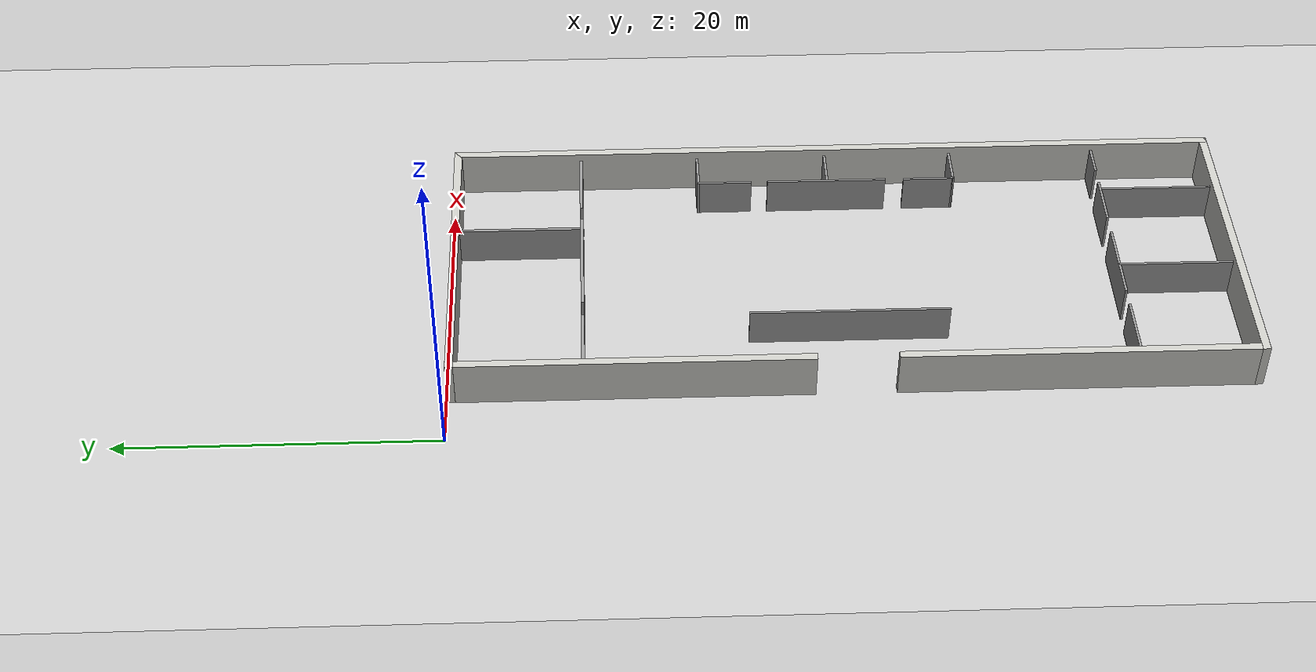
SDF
<sdf version="1.6">
 <world name="default">
  <model name="ground_plane">
   <static>1</static>
   <link name="link">
    <collision name="collision">
     <geometry><plane><normal>0 0 1</normal><size>100 100</size></plane></geometry>
     <surface><friction><ode><mu>100</mu><mu2>50</mu2></ode></friction></surface>
    </collision>
    <visual name="visual">
     <cast_shadows>0</cast_shadows>
     <geometry><plane><normal>0 0 1</normal><size>100 100</size></plane></geometry>
     <material>
      <script><uri>file://media/materials/scripts/gazebo.material</uri><name>Gazebo/Grey</name></script>
     </material>
    </visual>
   </link>
  </model>
  <model name="office">
   <link name="Wall_1">
    <pose>-24.75 -3e-06 0 0 0 -1.5708</pose>
    <inertial>
     <mass>1</mass>
     <inertia><ixx>1</ixx><ixy>0</ixy><ixz>0</ixz><iyy>1</iyy><iyz>0</iyz><izz>1</izz></inertia>
    </inertial>
    <visual name="Wall_1_Visual">
     <pose>0 0 1.25 0 -0 0</pose>
     <geometry><box><size>20 0.5 3.5</size></box></geometry>
     <material>
      <script><uri>file://media/materials/scripts/gazebo.material</uri><name>Gazebo/CeilingTiled</name></script>
      <ambient>1 1 1 1</ambient>
      <shader type="vertex"><normal_map>__default__</normal_map></shader>
      <diffuse>1 1 1 1</diffuse>
      <specular>0 0 0 1</specular>
      <emissive>0 0 0 1</emissive>
     </material>
     <meta><layer>0</layer></meta>
    </visual>
    <collision name="Wall_1_Collision">
     <pose>0 0 1.25 0 -0 0</pose>
     <geometry><box><size>20 0.5 3.5</size></box></geometry>
     <surface>
      <friction>
       <ode><mu>1</mu><mu2>1</mu2><fdir1>0 0 0</fdir1><slip1>0</slip1><slip2>0</slip2></ode>
       <torsional>
        <coefficient>1</coefficient>
        <patch_radius>0</patch_radius>
        <surface_radius>0</surface_radius>
        <use_patch_radius>1</use_patch_radius>
        <ode><slip>0</slip></ode>
       </torsional>
      </friction>
      <bounce><restitution_coefficient>0</restitution_coefficient><threshold>1e+06</threshold></bounce>
      <contact>
       <collide_without_contact>0</collide_without_contact>
       <collide_without_contact_bitmask>1</collide_without_contact_bitmask>
       <collide_bitmask>1</collide_bitmask>
       <ode>
        <soft_cfm>0</soft_cfm>
        <soft_erp>0.2</soft_erp>
        <kp>1e+13</kp>
        <kd>1</kd>
        <max_vel>0.01</max_vel>
        <min_depth>0</min_depth>
       </ode>
       <bullet>
        <split_impulse>1</split_impulse>
        <split_impulse_penetration_threshold>-0.01</split_impulse_penetration_threshold>
        <soft_cfm>0</soft_cfm>
        <soft_erp>0.2</soft_erp>
        <kp>1e+13</kp>
        <kd>1</kd>
       </bullet>
      </contact>
     </surface>
    </collision>
   </link>
   <link name="Wall_11">
    <pose>24.75 3e-06 0 0 0 -1.5708</pose>
    <inertial>
     <mass>1</mass>
     <inertia><ixx>1</ixx><ixy>0</ixy><ixz>0</ixz><iyy>1</iyy><iyz>0</iyz><izz>1</izz></inertia>
    </inertial>
    <visual name="Wall_11_Visual">
     <pose>0 0 1.25 0 -0 0</pose>
     <geometry><box><size>20 0.5 3.5</size></box></geometry>
     <material>
      <script><uri>file://media/materials/scripts/gazebo.material</uri><name>Gazebo/CeilingTiled</name></script>
      <ambient>1 1 1 1</ambient>
      <shader type="vertex"><normal_map>__default__</normal_map></shader>
      <diffuse>1 1 1 1</diffuse>
      <specular>0 0 0 1</specular>
      <emissive>0 0 0 1</emissive>
     </material>
     <meta><layer>0</layer></meta>
    </visual>
    <collision name="Wall_11_Collision">
     <pose>0 0 1.25 0 -0 0</pose>
     <geometry><box><size>20 0.5 3.5</size></box></geometry>
     <surface>
      <friction>
       <ode><mu>1</mu><mu2>1</mu2><fdir1>0 0 0</fdir1><slip1>0</slip1><slip2>0</slip2></ode>
       <torsional>
        <coefficient>1</coefficient>
        <patch_radius>0</patch_radius>
        <surface_radius>0</surface_radius>
        <use_patch_radius>1</use_patch_radius>
        <ode><slip>0</slip></ode>
       </torsional>
      </friction>
      <bounce><restitution_coefficient>0</restitution_coefficient><threshold>1e+06</threshold></bounce>
      <contact>
       <collide_without_contact>0</collide_without_contact>
       <collide_without_contact_bitmask>1</collide_without_contact_bitmask>
       <collide_bitmask>1</collide_bitmask>
       <ode>
        <soft_cfm>0</soft_cfm>
        <soft_erp>0.2</soft_erp>
        <kp>1e+13</kp>
        <kd>1</kd>
        <max_vel>0.01</max_vel>
        <min_depth>0</min_depth>
       </ode>
       <bullet>
        <split_impulse>1</split_impulse>
        <split_impulse_penetration_threshold>-0.01</split_impulse_penetration_threshold>
        <soft_cfm>0</soft_cfm>
        <soft_erp>0.2</soft_erp>
        <kp>1e+13</kp>
        <kd>1</kd>
       </bullet>
      </contact>
     </surface>
    </collision>
   </link>
   <link name="Wall_13">
    <pose>-16.658 7.127 0 0 0 -1.5708</pose>
    <visual name="Wall_13_Visual">
     <pose>0 0 1.25 0 -0 0</pose>
     <geometry><box><size>4.80017 0.2 2.5</size></box></geometry>
     <material>
      <script><uri>file://media/materials/scripts/gazebo.material</uri><name>Gazebo/Grey</name></script>
      <ambient>1 1 1 1</ambient>
     </material>
     <meta><layer>0</layer></meta>
    </visual>
    <collision name="Wall_13_Collision">
     <pose>0 0 1.25 0 -0 0</pose>
     <geometry><box><size>4.80017 0.2 2.5</size></box></geometry>
     <surface>
      <friction>
       <ode><mu>1</mu><mu2>1</mu2><fdir1>0 0 0</fdir1><slip1>0</slip1><slip2>0</slip2></ode>
       <torsional>
        <coefficient>1</coefficient>
        <patch_radius>0</patch_radius>
        <surface_radius>0</surface_radius>
        <use_patch_radius>1</use_patch_radius>
        <ode><slip>0</slip></ode>
       </torsional>
      </friction>
      <bounce><restitution_coefficient>0</restitution_coefficient><threshold>1e+06</threshold></bounce>
      <contact>
       <collide_without_contact>0</collide_without_contact>
       <collide_without_contact_bitmask>1</collide_without_contact_bitmask>
       <collide_bitmask>1</collide_bitmask>
       <ode>
        <soft_cfm>0</soft_cfm>
        <soft_erp>0.2</soft_erp>
        <kp>1e+13</kp>
        <kd>1</kd>
        <max_vel>0.01</max_vel>
        <min_depth>0</min_depth>
       </ode>
       <bullet>
        <split_impulse>1</split_impulse>
        <split_impulse_penetration_threshold>-0.01</split_impulse_penetration_threshold>
        <soft_cfm>0</soft_cfm>
        <soft_erp>0.2</soft_erp>
        <kp>1e+13</kp>
        <kd>1</kd>
       </bullet>
      </contact>
     </surface>
    </collision>
   </link>
   <link name="Wall_15">
    <pose>-16.658 -0.198 0 0 0 -1.5708</pose>
    <visual name="Wall_15_Visual">
     <pose>0 0 1.25 0 -0 0</pose>
     <geometry><box><size>7.75 0.2 2.5</size></box></geometry>
     <material>
      <script><uri>file://media/materials/scripts/gazebo.material</uri><name>Gazebo/Grey</name></script>
      <ambient>1 1 1 1</ambient>
     </material>
     <meta><layer>0</layer></meta>
    </visual>
    <collision name="Wall_15_Collision">
     <pose>0 0 1.25 0 -0 0</pose>
     <geometry><box><size>7.75 0.2 2.5</size></box></geometry>
     <surface>
      <friction>
       <ode><mu>1</mu><mu2>1</mu2><fdir1>0 0 0</fdir1><slip1>0</slip1><slip2>0</slip2></ode>
       <torsional>
        <coefficient>1</coefficient>
        <patch_radius>0</patch_radius>
        <surface_radius>0</surface_radius>
        <use_patch_radius>1</use_patch_radius>
        <ode><slip>0</slip></ode>
       </torsional>
      </friction>
      <bounce><restitution_coefficient>0</restitution_coefficient><threshold>1e+06</threshold></bounce>
      <contact>
       <collide_without_contact>0</collide_without_contact>
       <collide_without_contact_bitmask>1</collide_without_contact_bitmask>
       <collide_bitmask>1</collide_bitmask>
       <ode>
        <soft_cfm>0</soft_cfm>
        <soft_erp>0.2</soft_erp>
        <kp>1e+13</kp>
        <kd>1</kd>
        <max_vel>0.01</max_vel>
        <min_depth>0</min_depth>
       </ode>
       <bullet>
        <split_impulse>1</split_impulse>
        <split_impulse_penetration_threshold>-0.01</split_impulse_penetration_threshold>
        <soft_cfm>0</soft_cfm>
        <soft_erp>0.2</soft_erp>
        <kp>1e+13</kp>
        <kd>1</kd>
       </bullet>
      </contact>
     </surface>
    </collision>
   </link>
   <link name="Wall_17">
    <pose>-16.658 -7.423 0 0 0 -1.5708</pose>
    <visual name="Wall_17_Visual">
     <pose>0 0 1.25 0 -0 0</pose>
     <geometry><box><size>4.5 0.2 2.5</size></box></geometry>
     <material>
      <script><uri>file://media/materials/scripts/gazebo.material</uri><name>Gazebo/Grey</name></script>
      <ambient>1 1 1 1</ambient>
     </material>
     <meta><layer>0</layer></meta>
    </visual>
    <collision name="Wall_17_Collision">
     <pose>0 0 1.25 0 -0 0</pose>
     <geometry><box><size>4.5 0.2 2.5</size></box></geometry>
     <surface>
      <friction>
       <ode><mu>1</mu><mu2>1</mu2><fdir1>0 0 0</fdir1><slip1>0</slip1><slip2>0</slip2></ode>
       <torsional>
        <coefficient>1</coefficient>
        <patch_radius>0</patch_radius>
        <surface_radius>0</surface_radius>
        <use_patch_radius>1</use_patch_radius>
        <ode><slip>0</slip></ode>
       </torsional>
      </friction>
      <bounce><restitution_coefficient>0</restitution_coefficient><threshold>1e+06</threshold></bounce>
      <contact>
       <collide_without_contact>0</collide_without_contact>
       <collide_without_contact_bitmask>1</collide_without_contact_bitmask>
       <collide_bitmask>1</collide_bitmask>
       <ode>
        <soft_cfm>0</soft_cfm>
        <soft_erp>0.2</soft_erp>
        <kp>1e+13</kp>
        <kd>1</kd>
        <max_vel>0.01</max_vel>
        <min_depth>0</min_depth>
       </ode>
       <bullet>
        <split_impulse>1</split_impulse>
        <split_impulse_penetration_threshold>-0.01</split_impulse_penetration_threshold>
        <soft_cfm>0</soft_cfm>
        <soft_erp>0.2</soft_erp>
        <kp>1e+13</kp>
        <kd>1</kd>
       </bullet>
      </contact>
     </surface>
    </collision>
   </link>
   <link name="Wall_19">
    <pose>-20.703 2.792 0 0 -0 0</pose>
    <visual name="Wall_19_Visual">
     <pose>0 0 1.25 0 -0 0</pose>
     <geometry><box><size>8.04985 0.2 2.5</size></box></geometry>
     <material>
      <script><uri>file://media/materials/scripts/gazebo.material</uri><name>Gazebo/Grey</name></script>
      <ambient>1 1 1 1</ambient>
     </material>
     <meta><layer>0</layer></meta>
    </visual>
    <collision name="Wall_19_Collision">
     <pose>0 0 1.25 0 -0 0</pose>
     <geometry><box><size>8.04985 0.2 2.5</size></box></geometry>
     <surface>
      <friction>
       <ode><mu>1</mu><mu2>1</mu2><fdir1>0 0 0</fdir1><slip1>0</slip1><slip2>0</slip2></ode>
       <torsional>
        <coefficient>1</coefficient>
        <patch_radius>0</patch_radius>
        <surface_radius>0</surface_radius>
        <use_patch_radius>1</use_patch_radius>
        <ode><slip>0</slip></ode>
       </torsional>
      </friction>
      <bounce><restitution_coefficient>0</restitution_coefficient><threshold>1e+06</threshold></bounce>
      <contact>
       <collide_without_contact>0</collide_without_contact>
       <collide_without_contact_bitmask>1</collide_without_contact_bitmask>
       <collide_bitmask>1</collide_bitmask>
       <ode>
        <soft_cfm>0</soft_cfm>
        <soft_erp>0.2</soft_erp>
        <kp>1e+13</kp>
        <kd>1</kd>
        <max_vel>0.01</max_vel>
        <min_depth>0</min_depth>
       </ode>
       <bullet>
        <split_impulse>1</split_impulse>
        <split_impulse_penetration_threshold>-0.01</split_impulse_penetration_threshold>
        <soft_cfm>0</soft_cfm>
        <soft_erp>0.2</soft_erp>
        <kp>1e+13</kp>
        <kd>1</kd>
       </bullet>
      </contact>
     </surface>
    </collision>
   </link>
   <link name="Wall_21">
    <pose>17.2839 8.57905 0 0 0 -1.57072</pose>
    <visual name="Wall_21_Visual">
     <pose>0 0 1.25 0 -0 0</pose>
     <geometry><box><size>2.25 0.15 2.5</size></box></geometry>
     <material>
      <script><uri>file://media/materials/scripts/gazebo.material</uri><name>Gazebo/Grey</name></script>
      <ambient>1 1 1 1</ambient>
     </material>
     <meta><layer>0</layer></meta>
    </visual>
    <collision name="Wall_21_Collision">
     <pose>0 0 1.25 0 -0 0</pose>
     <geometry><box><size>2.25 0.15 2.5</size></box></geometry>
     <surface>
      <friction>
       <ode><mu>1</mu><mu2>1</mu2><fdir1>0 0 0</fdir1><slip1>0</slip1><slip2>0</slip2></ode>
       <torsional>
        <coefficient>1</coefficient>
        <patch_radius>0</patch_radius>
        <surface_radius>0</surface_radius>
        <use_patch_radius>1</use_patch_radius>
        <ode><slip>0</slip></ode>
       </torsional>
      </friction>
      <bounce><restitution_coefficient>0</restitution_coefficient><threshold>1e+06</threshold></bounce>
      <contact>
       <collide_without_contact>0</collide_without_contact>
       <collide_without_contact_bitmask>1</collide_without_contact_bitmask>
       <collide_bitmask>1</collide_bitmask>
       <ode>
        <soft_cfm>0</soft_cfm>
        <soft_erp>0.2</soft_erp>
        <kp>1e+13</kp>
        <kd>1</kd>
        <max_vel>0.01</max_vel>
        <min_depth>0</min_depth>
       </ode>
       <bullet>
        <split_impulse>1</split_impulse>
        <split_impulse_penetration_threshold>-0.01</split_impulse_penetration_threshold>
        <soft_cfm>0</soft_cfm>
        <soft_erp>0.2</soft_erp>
        <kp>1e+13</kp>
        <kd>1</kd>
       </bullet>
      </contact>
     </surface>
    </collision>
   </link>
   <link name="Wall_23">
    <pose>17.2838 4.5041 0 0 0 -1.5708</pose>
    <visual name="Wall_23_Visual">
     <pose>0 0 1.25 0 -0 0</pose>
     <geometry><box><size>3.5 0.15 2.5</size></box></geometry>
     <material>
      <script><uri>file://media/materials/scripts/gazebo.material</uri><name>Gazebo/Grey</name></script>
      <ambient>1 1 1 1</ambient>
     </material>
     <meta><layer>0</layer></meta>
    </visual>
    <collision name="Wall_23_Collision">
     <pose>0 0 1.25 0 -0 0</pose>
     <geometry><box><size>3.5 0.15 2.5</size></box></geometry>
     <surface>
      <friction>
       <ode><mu>1</mu><mu2>1</mu2><fdir1>0 0 0</fdir1><slip1>0</slip1><slip2>0</slip2></ode>
       <torsional>
        <coefficient>1</coefficient>
        <patch_radius>0</patch_radius>
        <surface_radius>0</surface_radius>
        <use_patch_radius>1</use_patch_radius>
        <ode><slip>0</slip></ode>
       </torsional>
      </friction>
      <bounce><restitution_coefficient>0</restitution_coefficient><threshold>1e+06</threshold></bounce>
      <contact>
       <collide_without_contact>0</collide_without_contact>
       <collide_without_contact_bitmask>1</collide_without_contact_bitmask>
       <collide_bitmask>1</collide_bitmask>
       <ode>
        <soft_cfm>0</soft_cfm>
        <soft_erp>0.2</soft_erp>
        <kp>1e+13</kp>
        <kd>1</kd>
        <max_vel>0.01</max_vel>
        <min_depth>0</min_depth>
       </ode>
       <bullet>
        <split_impulse>1</split_impulse>
        <split_impulse_penetration_threshold>-0.01</split_impulse_penetration_threshold>
        <soft_cfm>0</soft_cfm>
        <soft_erp>0.2</soft_erp>
        <kp>1e+13</kp>
        <kd>1</kd>
       </bullet>
      </contact>
     </surface>
    </collision>
   </link>
   <link name="Wall_25">
    <pose>17.2838 -1.3459 0 0 0 -1.5708</pose>
    <visual name="Wall_25_Visual">
     <pose>0 0 1.25 0 -0 0</pose>
     <geometry><box><size>5.5 0.15 2.5</size></box></geometry>
     <material>
      <script><uri>file://media/materials/scripts/gazebo.material</uri><name>Gazebo/Grey</name></script>
      <ambient>1 1 1 1</ambient>
     </material>
     <meta><layer>0</layer></meta>
    </visual>
    <collision name="Wall_25_Collision">
     <pose>0 0 1.25 0 -0 0</pose>
     <geometry><box><size>5.5 0.15 2.5</size></box></geometry>
     <surface>
      <friction>
       <ode><mu>1</mu><mu2>1</mu2><fdir1>0 0 0</fdir1><slip1>0</slip1><slip2>0</slip2></ode>
       <torsional>
        <coefficient>1</coefficient>
        <patch_radius>0</patch_radius>
        <surface_radius>0</surface_radius>
        <use_patch_radius>1</use_patch_radius>
        <ode><slip>0</slip></ode>
       </torsional>
      </friction>
      <bounce><restitution_coefficient>0</restitution_coefficient><threshold>1e+06</threshold></bounce>
      <contact>
       <collide_without_contact>0</collide_without_contact>
       <collide_without_contact_bitmask>1</collide_without_contact_bitmask>
       <collide_bitmask>1</collide_bitmask>
       <ode>
        <soft_cfm>0</soft_cfm>
        <soft_erp>0.2</soft_erp>
        <kp>1e+13</kp>
        <kd>1</kd>
        <max_vel>0.01</max_vel>
        <min_depth>0</min_depth>
       </ode>
       <bullet>
        <split_impulse>1</split_impulse>
        <split_impulse_penetration_threshold>-0.01</split_impulse_penetration_threshold>
        <soft_cfm>0</soft_cfm>
        <soft_erp>0.2</soft_erp>
        <kp>1e+13</kp>
        <kd>1</kd>
       </bullet>
      </contact>
     </surface>
    </collision>
   </link>
   <link name="Wall_27">
    <pose>17.2838 -7.4709 0 0 0 -1.5708</pose>
    <visual name="Wall_27_Visual">
     <pose>0 0 1.25 0 -0 0</pose>
     <geometry><box><size>4.35 0.15 2.5</size></box></geometry>
     <material>
      <script><uri>file://media/materials/scripts/gazebo.material</uri><name>Gazebo/Grey</name></script>
      <ambient>1 1 1 1</ambient>
     </material>
     <meta><layer>0</layer></meta>
    </visual>
    <collision name="Wall_27_Collision">
     <pose>0 0 1.25 0 -0 0</pose>
     <geometry><box><size>4.35 0.15 2.5</size></box></geometry>
     <surface>
      <friction>
       <ode><mu>1</mu><mu2>1</mu2><fdir1>0 0 0</fdir1><slip1>0</slip1><slip2>0</slip2></ode>
       <torsional>
        <coefficient>1</coefficient>
        <patch_radius>0</patch_radius>
        <surface_radius>0</surface_radius>
        <use_patch_radius>1</use_patch_radius>
        <ode><slip>0</slip></ode>
       </torsional>
      </friction>
      <bounce><restitution_coefficient>0</restitution_coefficient><threshold>1e+06</threshold></bounce>
      <contact>
       <collide_without_contact>0</collide_without_contact>
       <collide_without_contact_bitmask>1</collide_without_contact_bitmask>
       <collide_bitmask>1</collide_bitmask>
       <ode>
        <soft_cfm>0</soft_cfm>
        <soft_erp>0.2</soft_erp>
        <kp>1e+13</kp>
        <kd>1</kd>
        <max_vel>0.01</max_vel>
        <min_depth>0</min_depth>
       </ode>
       <bullet>
        <split_impulse>1</split_impulse>
        <split_impulse_penetration_threshold>-0.01</split_impulse_penetration_threshold>
        <soft_cfm>0</soft_cfm>
        <soft_erp>0.2</soft_erp>
        <kp>1e+13</kp>
        <kd>1</kd>
       </bullet>
      </contact>
     </surface>
    </collision>
   </link>
   <link name="Wall_29">
    <pose>20.9993 5.58355 0 0 -0 0</pose>
    <visual name="Wall_29_Visual">
     <pose>0 0 1.25 0 -0 0</pose>
     <geometry><box><size>7.5 0.15 2.5</size></box></geometry>
     <material>
      <script><uri>file://media/materials/scripts/gazebo.material</uri><name>Gazebo/Grey</name></script>
      <ambient>1 1 1 1</ambient>
     </material>
     <meta><layer>0</layer></meta>
    </visual>
    <collision name="Wall_29_Collision">
     <pose>0 0 1.25 0 -0 0</pose>
     <geometry><box><size>7.5 0.15 2.5</size></box></geometry>
     <surface>
      <friction>
       <ode><mu>1</mu><mu2>1</mu2><fdir1>0 0 0</fdir1><slip1>0</slip1><slip2>0</slip2></ode>
       <torsional>
        <coefficient>1</coefficient>
        <patch_radius>0</patch_radius>
        <surface_radius>0</surface_radius>
        <use_patch_radius>1</use_patch_radius>
        <ode><slip>0</slip></ode>
       </torsional>
      </friction>
      <bounce><restitution_coefficient>0</restitution_coefficient><threshold>1e+06</threshold></bounce>
      <contact>
       <collide_without_contact>0</collide_without_contact>
       <collide_without_contact_bitmask>1</collide_without_contact_bitmask>
       <collide_bitmask>1</collide_bitmask>
       <ode>
        <soft_cfm>0</soft_cfm>
        <soft_erp>0.2</soft_erp>
        <kp>1e+13</kp>
        <kd>1</kd>
        <max_vel>0.01</max_vel>
        <min_depth>0</min_depth>
       </ode>
       <bullet>
        <split_impulse>1</split_impulse>
        <split_impulse_penetration_threshold>-0.01</split_impulse_penetration_threshold>
        <soft_cfm>0</soft_cfm>
        <soft_erp>0.2</soft_erp>
        <kp>1e+13</kp>
        <kd>1</kd>
       </bullet>
      </contact>
     </surface>
    </collision>
   </link>
   <link name="Wall_3">
    <pose>-1e-06 9.75 0 0 -0 0</pose>
    <inertial>
     <mass>1</mass>
     <inertia><ixx>1</ixx><ixy>0</ixy><ixz>0</ixz><iyy>1</iyy><iyz>0</iyz><izz>1</izz></inertia>
    </inertial>
    <visual name="Wall_3_Visual">
     <pose>0 0 1.25 0 -0 0</pose>
     <geometry><box><size>50 0.5 3.5</size></box></geometry>
     <material>
      <script><uri>file://media/materials/scripts/gazebo.material</uri><name>Gazebo/CeilingTiled</name></script>
      <ambient>1 1 1 1</ambient>
      <shader type="vertex"><normal_map>__default__</normal_map></shader>
      <diffuse>1 1 1 1</diffuse>
      <specular>0 0 0 1</specular>
      <emissive>0 0 0 1</emissive>
     </material>
     <meta><layer>0</layer></meta>
    </visual>
    <collision name="Wall_3_Collision">
     <pose>0 0 1.25 0 -0 0</pose>
     <geometry><box><size>50 0.5 3.5</size></box></geometry>
     <surface>
      <friction>
       <ode><mu>1</mu><mu2>1</mu2><fdir1>0 0 0</fdir1><slip1>0</slip1><slip2>0</slip2></ode>
       <torsional>
        <coefficient>1</coefficient>
        <patch_radius>0</patch_radius>
        <surface_radius>0</surface_radius>
        <use_patch_radius>1</use_patch_radius>
        <ode><slip>0</slip></ode>
       </torsional>
      </friction>
      <bounce><restitution_coefficient>0</restitution_coefficient><threshold>1e+06</threshold></bounce>
      <contact>
       <collide_without_contact>0</collide_without_contact>
       <collide_without_contact_bitmask>1</collide_without_contact_bitmask>
       <collide_bitmask>1</collide_bitmask>
       <ode>
        <soft_cfm>0</soft_cfm>
        <soft_erp>0.2</soft_erp>
        <kp>1e+13</kp>
        <kd>1</kd>
        <max_vel>0.01</max_vel>
        <min_depth>0</min_depth>
       </ode>
       <bullet>
        <split_impulse>1</split_impulse>
        <split_impulse_penetration_threshold>-0.01</split_impulse_penetration_threshold>
        <soft_cfm>0</soft_cfm>
        <soft_erp>0.2</soft_erp>
        <kp>1e+13</kp>
        <kd>1</kd>
       </bullet>
      </contact>
     </surface>
    </collision>
   </link>
   <link name="Wall_31">
    <pose>20.9993 -1.658 0 0 -0 0</pose>
    <visual name="Wall_31_Visual">
     <pose>0 0 1.25 0 -0 0</pose>
     <geometry><box><size>7.5 0.15 2.5</size></box></geometry>
     <material>
      <script><uri>file://media/materials/scripts/gazebo.material</uri><name>Gazebo/Grey</name></script>
      <ambient>1 1 1 1</ambient>
     </material>
     <meta><layer>0</layer></meta>
    </visual>
    <collision name="Wall_31_Collision">
     <pose>0 0 1.25 0 -0 0</pose>
     <geometry><box><size>7.5 0.15 2.5</size></box></geometry>
     <surface>
      <friction>
       <ode><mu>1</mu><mu2>1</mu2><fdir1>0 0 0</fdir1><slip1>0</slip1><slip2>0</slip2></ode>
       <torsional>
        <coefficient>1</coefficient>
        <patch_radius>0</patch_radius>
        <surface_radius>0</surface_radius>
        <use_patch_radius>1</use_patch_radius>
        <ode><slip>0</slip></ode>
       </torsional>
      </friction>
      <bounce><restitution_coefficient>0</restitution_coefficient><threshold>1e+06</threshold></bounce>
      <contact>
       <collide_without_contact>0</collide_without_contact>
       <collide_without_contact_bitmask>1</collide_without_contact_bitmask>
       <collide_bitmask>1</collide_bitmask>
       <ode>
        <soft_cfm>0</soft_cfm>
        <soft_erp>0.2</soft_erp>
        <kp>1e+13</kp>
        <kd>1</kd>
        <max_vel>0.01</max_vel>
        <min_depth>0</min_depth>
       </ode>
       <bullet>
        <split_impulse>1</split_impulse>
        <split_impulse_penetration_threshold>-0.01</split_impulse_penetration_threshold>
        <soft_cfm>0</soft_cfm>
        <soft_erp>0.2</soft_erp>
        <kp>1e+13</kp>
        <kd>1</kd>
       </bullet>
      </contact>
     </surface>
    </collision>
   </link>
   <link name="Wall_34">
    <pose>-8.97184 8.28865 0 0 0 -1.5708</pose>
    <visual name="Wall_34_Visual">
     <pose>0 0 1.25 0 -0 0</pose>
     <geometry><box><size>2.75032 0.15 2.5</size></box></geometry>
     <material>
      <script><uri>file://media/materials/scripts/gazebo.material</uri><name>Gazebo/Grey</name></script>
      <ambient>1 1 1 1</ambient>
     </material>
     <meta><layer>0</layer></meta>
    </visual>
    <collision name="Wall_34_Collision">
     <pose>0 0 1.25 0 -0 0</pose>
     <geometry><box><size>2.75032 0.15 2.5</size></box></geometry>
     <surface>
      <friction>
       <ode><mu>1</mu><mu2>1</mu2><fdir1>0 0 0</fdir1><slip1>0</slip1><slip2>0</slip2></ode>
       <torsional>
        <coefficient>1</coefficient>
        <patch_radius>0</patch_radius>
        <surface_radius>0</surface_radius>
        <use_patch_radius>1</use_patch_radius>
        <ode><slip>0</slip></ode>
       </torsional>
      </friction>
      <bounce><restitution_coefficient>0</restitution_coefficient><threshold>1e+06</threshold></bounce>
      <contact>
       <collide_without_contact>0</collide_without_contact>
       <collide_without_contact_bitmask>1</collide_without_contact_bitmask>
       <collide_bitmask>1</collide_bitmask>
       <ode>
        <soft_cfm>0</soft_cfm>
        <soft_erp>0.2</soft_erp>
        <kp>1e+13</kp>
        <kd>1</kd>
        <max_vel>0.01</max_vel>
        <min_depth>0</min_depth>
       </ode>
       <bullet>
        <split_impulse>1</split_impulse>
        <split_impulse_penetration_threshold>-0.01</split_impulse_penetration_threshold>
        <soft_cfm>0</soft_cfm>
        <soft_erp>0.2</soft_erp>
        <kp>1e+13</kp>
        <kd>1</kd>
       </bullet>
      </contact>
     </surface>
    </collision>
   </link>
   <link name="Wall_35">
    <pose>-7.25638 6.98865 0 0 -0 0</pose>
    <visual name="Wall_35_Visual">
     <pose>0 0 1.25 0 -0 0</pose>
     <geometry><box><size>3.5 0.15 2.5</size></box></geometry>
     <material>
      <script><uri>file://media/materials/scripts/gazebo.material</uri><name>Gazebo/Grey</name></script>
      <ambient>1 1 1 1</ambient>
     </material>
     <meta><layer>0</layer></meta>
    </visual>
    <collision name="Wall_35_Collision">
     <pose>0 0 1.25 0 -0 0</pose>
     <geometry><box><size>3.5 0.15 2.5</size></box></geometry>
     <surface>
      <friction>
       <ode><mu>1</mu><mu2>1</mu2><fdir1>0 0 0</fdir1><slip1>0</slip1><slip2>0</slip2></ode>
       <torsional>
        <coefficient>1</coefficient>
        <patch_radius>0</patch_radius>
        <surface_radius>0</surface_radius>
        <use_patch_radius>1</use_patch_radius>
        <ode><slip>0</slip></ode>
       </torsional>
      </friction>
      <bounce><restitution_coefficient>0</restitution_coefficient><threshold>1e+06</threshold></bounce>
      <contact>
       <collide_without_contact>0</collide_without_contact>
       <collide_without_contact_bitmask>1</collide_without_contact_bitmask>
       <collide_bitmask>1</collide_bitmask>
       <ode>
        <soft_cfm>0</soft_cfm>
        <soft_erp>0.2</soft_erp>
        <kp>1e+13</kp>
        <kd>1</kd>
        <max_vel>0.01</max_vel>
        <min_depth>0</min_depth>
       </ode>
       <bullet>
        <split_impulse>1</split_impulse>
        <split_impulse_penetration_threshold>-0.01</split_impulse_penetration_threshold>
        <soft_cfm>0</soft_cfm>
        <soft_erp>0.2</soft_erp>
        <kp>1e+13</kp>
        <kd>1</kd>
       </bullet>
      </contact>
     </surface>
    </collision>
   </link>
   <link name="Wall_37">
    <pose>-0.572 6.989 0 0 -0 0</pose>
    <visual name="Wall_37_Visual">
     <pose>0 0 1.25 0 -0 0</pose>
     <geometry><box><size>7.75 0.15 2.5</size></box></geometry>
     <material>
      <script><uri>file://media/materials/scripts/gazebo.material</uri><name>Gazebo/Grey</name></script>
      <ambient>1 1 1 1</ambient>
     </material>
     <meta><layer>0</layer></meta>
    </visual>
    <collision name="Wall_37_Collision">
     <pose>0 0 1.25 0 -0 0</pose>
     <geometry><box><size>7.75 0.15 2.5</size></box></geometry>
     <surface>
      <friction>
       <ode><mu>1</mu><mu2>1</mu2><fdir1>0 0 0</fdir1><slip1>0</slip1><slip2>0</slip2></ode>
       <torsional>
        <coefficient>1</coefficient>
        <patch_radius>0</patch_radius>
        <surface_radius>0</surface_radius>
        <use_patch_radius>1</use_patch_radius>
        <ode><slip>0</slip></ode>
       </torsional>
      </friction>
      <bounce><restitution_coefficient>0</restitution_coefficient><threshold>1e+06</threshold></bounce>
      <contact>
       <collide_without_contact>0</collide_without_contact>
       <collide_without_contact_bitmask>1</collide_without_contact_bitmask>
       <collide_bitmask>1</collide_bitmask>
       <ode>
        <soft_cfm>0</soft_cfm>
        <soft_erp>0.2</soft_erp>
        <kp>1e+13</kp>
        <kd>1</kd>
        <max_vel>0.01</max_vel>
        <min_depth>0</min_depth>
       </ode>
       <bullet>
        <split_impulse>1</split_impulse>
        <split_impulse_penetration_threshold>-0.01</split_impulse_penetration_threshold>
        <soft_cfm>0</soft_cfm>
        <soft_erp>0.2</soft_erp>
        <kp>1e+13</kp>
        <kd>1</kd>
       </bullet>
      </contact>
     </surface>
    </collision>
   </link>
   <link name="Wall_39">
    <pose>6.17808 6.98882 0 0 0 -0.00011</pose>
    <visual name="Wall_39_Visual">
     <pose>0 0 1.25 0 -0 0</pose>
     <geometry><box><size>3.35 0.15 2.5</size></box></geometry>
     <material>
      <script><uri>file://media/materials/scripts/gazebo.material</uri><name>Gazebo/Grey</name></script>
      <ambient>1 1 1 1</ambient>
     </material>
     <meta><layer>0</layer></meta>
    </visual>
    <collision name="Wall_39_Collision">
     <pose>0 0 1.25 0 -0 0</pose>
     <geometry><box><size>3.35 0.15 2.5</size></box></geometry>
     <surface>
      <friction>
       <ode><mu>1</mu><mu2>1</mu2><fdir1>0 0 0</fdir1><slip1>0</slip1><slip2>0</slip2></ode>
       <torsional>
        <coefficient>1</coefficient>
        <patch_radius>0</patch_radius>
        <surface_radius>0</surface_radius>
        <use_patch_radius>1</use_patch_radius>
        <ode><slip>0</slip></ode>
       </torsional>
      </friction>
      <bounce><restitution_coefficient>0</restitution_coefficient><threshold>1e+06</threshold></bounce>
      <contact>
       <collide_without_contact>0</collide_without_contact>
       <collide_without_contact_bitmask>1</collide_without_contact_bitmask>
       <collide_bitmask>1</collide_bitmask>
       <ode>
        <soft_cfm>0</soft_cfm>
        <soft_erp>0.2</soft_erp>
        <kp>1e+13</kp>
        <kd>1</kd>
        <max_vel>0.01</max_vel>
        <min_depth>0</min_depth>
       </ode>
       <bullet>
        <split_impulse>1</split_impulse>
        <split_impulse_penetration_threshold>-0.01</split_impulse_penetration_threshold>
        <soft_cfm>0</soft_cfm>
        <soft_erp>0.2</soft_erp>
        <kp>1e+13</kp>
        <kd>1</kd>
       </bullet>
      </contact>
     </surface>
    </collision>
   </link>
   <link name="Wall_40">
    <pose>7.77816 8.28865 0 0 -0 1.5708</pose>
    <visual name="Wall_40_Visual">
     <pose>0 0 1.25 0 -0 0</pose>
     <geometry><box><size>2.75 0.15 2.5</size></box></geometry>
     <material>
      <script><uri>file://media/materials/scripts/gazebo.material</uri><name>Gazebo/Grey</name></script>
      <ambient>1 1 1 1</ambient>
     </material>
     <meta><layer>0</layer></meta>
    </visual>
    <collision name="Wall_40_Collision">
     <pose>0 0 1.25 0 -0 0</pose>
     <geometry><box><size>2.75 0.15 2.5</size></box></geometry>
     <surface>
      <friction>
       <ode><mu>1</mu><mu2>1</mu2><fdir1>0 0 0</fdir1><slip1>0</slip1><slip2>0</slip2></ode>
       <torsional>
        <coefficient>1</coefficient>
        <patch_radius>0</patch_radius>
        <surface_radius>0</surface_radius>
        <use_patch_radius>1</use_patch_radius>
        <ode><slip>0</slip></ode>
       </torsional>
      </friction>
      <bounce><restitution_coefficient>0</restitution_coefficient><threshold>1e+06</threshold></bounce>
      <contact>
       <collide_without_contact>0</collide_without_contact>
       <collide_without_contact_bitmask>1</collide_without_contact_bitmask>
       <collide_bitmask>1</collide_bitmask>
       <ode>
        <soft_cfm>0</soft_cfm>
        <soft_erp>0.2</soft_erp>
        <kp>1e+13</kp>
        <kd>1</kd>
        <max_vel>0.01</max_vel>
        <min_depth>0</min_depth>
       </ode>
       <bullet>
        <split_impulse>1</split_impulse>
        <split_impulse_penetration_threshold>-0.01</split_impulse_penetration_threshold>
        <soft_cfm>0</soft_cfm>
        <soft_erp>0.2</soft_erp>
        <kp>1e+13</kp>
        <kd>1</kd>
       </bullet>
      </contact>
     </surface>
    </collision>
   </link>
   <link name="Wall_42">
    <pose>-0.516625 8.36956 0 0 0 -1.5708</pose>
    <visual name="Wall_42_Visual">
     <pose>0 0 1.25 0 -0 0</pose>
     <geometry><box><size>2.75 0.15 2.5</size></box></geometry>
     <material>
      <script><uri>file://media/materials/scripts/gazebo.material</uri><name>Gazebo/Grey</name></script>
      <ambient>1 1 1 1</ambient>
     </material>
     <meta><layer>0</layer></meta>
    </visual>
    <collision name="Wall_42_Collision">
     <pose>0 0 1.25 0 -0 0</pose>
     <geometry><box><size>2.75 0.15 2.5</size></box></geometry>
     <surface>
      <friction>
       <ode><mu>1</mu><mu2>1</mu2><fdir1>0 0 0</fdir1><slip1>0</slip1><slip2>0</slip2></ode>
       <torsional>
        <coefficient>1</coefficient>
        <patch_radius>0</patch_radius>
        <surface_radius>0</surface_radius>
        <use_patch_radius>1</use_patch_radius>
        <ode><slip>0</slip></ode>
       </torsional>
      </friction>
      <bounce><restitution_coefficient>0</restitution_coefficient><threshold>1e+06</threshold></bounce>
      <contact>
       <collide_without_contact>0</collide_without_contact>
       <collide_without_contact_bitmask>1</collide_without_contact_bitmask>
       <collide_bitmask>1</collide_bitmask>
       <ode>
        <soft_cfm>0</soft_cfm>
        <soft_erp>0.2</soft_erp>
        <kp>1e+13</kp>
        <kd>1</kd>
        <max_vel>0.01</max_vel>
        <min_depth>0</min_depth>
       </ode>
       <bullet>
        <split_impulse>1</split_impulse>
        <split_impulse_penetration_threshold>-0.01</split_impulse_penetration_threshold>
        <soft_cfm>0</soft_cfm>
        <soft_erp>0.2</soft_erp>
        <kp>1e+13</kp>
        <kd>1</kd>
       </bullet>
      </contact>
     </surface>
    </collision>
   </link>
   <link name="Wall_44">
    <pose>-0.086317 -5.33946 0 0 -0 0</pose>
    <visual name="Wall_44_Visual">
     <pose>0 0 1.25 0 -0 0</pose>
     <geometry><box><size>12.5 0.15 2.5</size></box></geometry>
     <material>
      <script><uri>file://media/materials/scripts/gazebo.material</uri><name>Gazebo/Grey</name></script>
      <ambient>1 1 1 1</ambient>
     </material>
     <meta><layer>0</layer></meta>
    </visual>
    <collision name="Wall_44_Collision">
     <pose>0 0 1.25 0 -0 0</pose>
     <geometry><box><size>12.5 0.15 2.5</size></box></geometry>
     <surface>
      <friction>
       <ode><mu>1</mu><mu2>1</mu2><fdir1>0 0 0</fdir1><slip1>0</slip1><slip2>0</slip2></ode>
       <torsional>
        <coefficient>1</coefficient>
        <patch_radius>0</patch_radius>
        <surface_radius>0</surface_radius>
        <use_patch_radius>1</use_patch_radius>
        <ode><slip>0</slip></ode>
       </torsional>
      </friction>
      <bounce><restitution_coefficient>0</restitution_coefficient><threshold>1e+06</threshold></bounce>
      <contact>
       <collide_without_contact>0</collide_without_contact>
       <collide_without_contact_bitmask>1</collide_without_contact_bitmask>
       <collide_bitmask>1</collide_bitmask>
       <ode>
        <soft_cfm>0</soft_cfm>
        <soft_erp>0.2</soft_erp>
        <kp>1e+13</kp>
        <kd>1</kd>
        <max_vel>0.01</max_vel>
        <min_depth>0</min_depth>
       </ode>
       <bullet>
        <split_impulse>1</split_impulse>
        <split_impulse_penetration_threshold>-0.01</split_impulse_penetration_threshold>
        <soft_cfm>0</soft_cfm>
        <soft_erp>0.2</soft_erp>
        <kp>1e+13</kp>
        <kd>1</kd>
       </bullet>
      </contact>
     </surface>
    </collision>
   </link>
   <link name="Wall_7">
    <pose>-13.75 -9.75 0 0 -0 0</pose>
    <inertial>
     <mass>1</mass>
     <inertia><ixx>1</ixx><ixy>0</ixy><ixz>0</ixz><iyy>1</iyy><iyz>0</iyz><izz>1</izz></inertia>
    </inertial>
    <visual name="Wall_7_Visual">
     <pose>0 0 1.25 0 -0 0</pose>
     <geometry><box><size>22.5 0.5 3.5</size></box></geometry>
     <material>
      <script><uri>file://media/materials/scripts/gazebo.material</uri><name>Gazebo/CeilingTiled</name></script>
      <ambient>1 1 1 1</ambient>
      <shader type="vertex"><normal_map>__default__</normal_map></shader>
      <diffuse>1 1 1 1</diffuse>
      <specular>0 0 0 1</specular>
      <emissive>0 0 0 1</emissive>
     </material>
     <meta><layer>0</layer></meta>
    </visual>
    <collision name="Wall_7_Collision">
     <pose>0 0 1.25 0 -0 0</pose>
     <geometry><box><size>22.5 0.5 3.5</size></box></geometry>
     <surface>
      <friction>
       <ode><mu>1</mu><mu2>1</mu2><fdir1>0 0 0</fdir1><slip1>0</slip1><slip2>0</slip2></ode>
       <torsional>
        <coefficient>1</coefficient>
        <patch_radius>0</patch_radius>
        <surface_radius>0</surface_radius>
        <use_patch_radius>1</use_patch_radius>
        <ode><slip>0</slip></ode>
       </torsional>
      </friction>
      <bounce><restitution_coefficient>0</restitution_coefficient><threshold>1e+06</threshold></bounce>
      <contact>
       <collide_without_contact>0</collide_without_contact>
       <collide_without_contact_bitmask>1</collide_without_contact_bitmask>
       <collide_bitmask>1</collide_bitmask>
       <ode>
        <soft_cfm>0</soft_cfm>
        <soft_erp>0.2</soft_erp>
        <kp>1e+13</kp>
        <kd>1</kd>
        <max_vel>0.01</max_vel>
        <min_depth>0</min_depth>
       </ode>
       <bullet>
        <split_impulse>1</split_impulse>
        <split_impulse_penetration_threshold>-0.01</split_impulse_penetration_threshold>
        <soft_cfm>0</soft_cfm>
        <soft_erp>0.2</soft_erp>
        <kp>1e+13</kp>
        <kd>1</kd>
       </bullet>
      </contact>
     </surface>
    </collision>
   </link>
   <link name="Wall_9">
    <pose>13.7296 -9.74954 0 0 -0 0</pose>
    <inertial>
     <mass>1</mass>
     <inertia><ixx>1</ixx><ixy>0</ixy><ixz>0</ixz><iyy>1</iyy><iyz>0</iyz><izz>1</izz></inertia>
    </inertial>
    <visual name="Wall_9_Visual">
     <pose>0 0 1.25 0 -0 0</pose>
     <geometry><box><size>22.5 0.5 3.5</size></box></geometry>
     <material>
      <script><uri>file://media/materials/scripts/gazebo.material</uri><name>Gazebo/CeilingTiled</name></script>
      <ambient>1 1 1 1</ambient>
      <shader type="vertex"><normal_map>__default__</normal_map></shader>
      <diffuse>1 1 1 1</diffuse>
      <specular>0 0 0 1</specular>
      <emissive>0 0 0 1</emissive>
     </material>
     <meta><layer>0</layer></meta>
    </visual>
    <collision name="Wall_9_Collision">
     <pose>0 0 1.25 0 -0 0</pose>
     <geometry><box><size>22.5 0.5 3.5</size></box></geometry>
     <surface>
      <friction>
       <ode><mu>1</mu><mu2>1</mu2><fdir1>0 0 0</fdir1><slip1>0</slip1><slip2>0</slip2></ode>
       <torsional>
        <coefficient>1</coefficient>
        <patch_radius>0</patch_radius>
        <surface_radius>0</surface_radius>
        <use_patch_radius>1</use_patch_radius>
        <ode><slip>0</slip></ode>
       </torsional>
      </friction>
      <bounce><restitution_coefficient>0</restitution_coefficient><threshold>1e+06</threshold></bounce>
      <contact>
       <collide_without_contact>0</collide_without_contact>
       <collide_without_contact_bitmask>1</collide_without_contact_bitmask>
       <collide_bitmask>1</collide_bitmask>
       <ode>
        <soft_cfm>0</soft_cfm>
        <soft_erp>0.2</soft_erp>
        <kp>1e+13</kp>
        <kd>1</kd>
        <max_vel>0.01</max_vel>
        <min_depth>0</min_depth>
       </ode>
       <bullet>
        <split_impulse>1</split_impulse>
        <split_impulse_penetration_threshold>-0.01</split_impulse_penetration_threshold>
        <soft_cfm>0</soft_cfm>
        <soft_erp>0.2</soft_erp>
        <kp>1e+13</kp>
        <kd>1</kd>
       </bullet>
      </contact>
     </surface>
    </collision>
   </link>
   <static>1</static>
   <pose>13.25 -25 0 0 0 -1.5708</pose>
  </model>
 </world>
</sdf>
